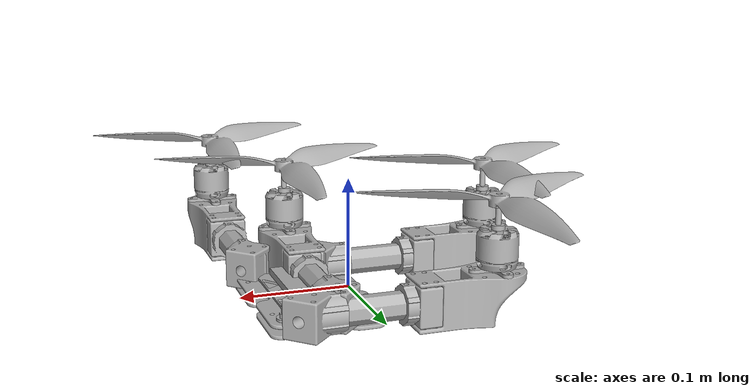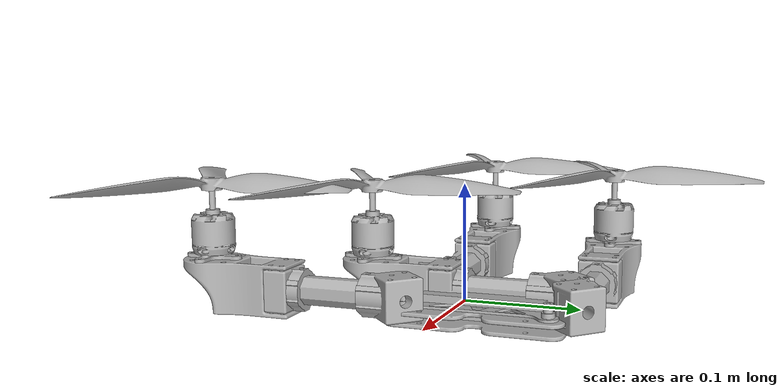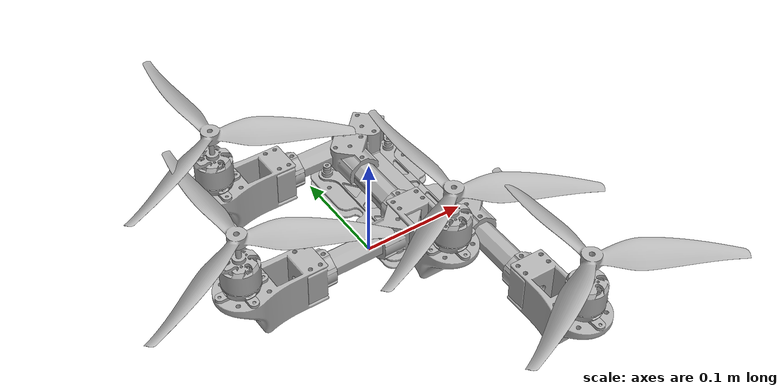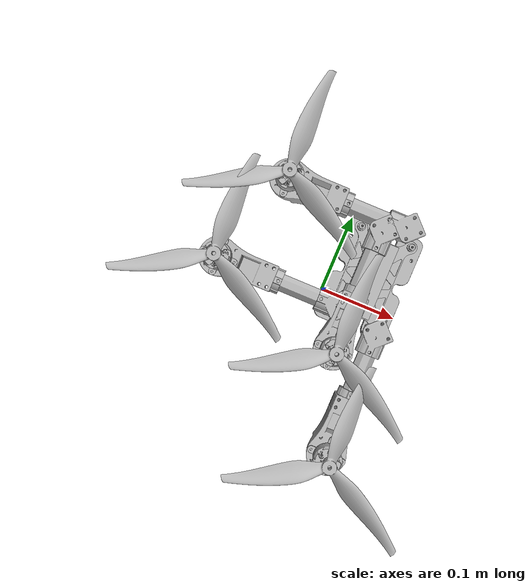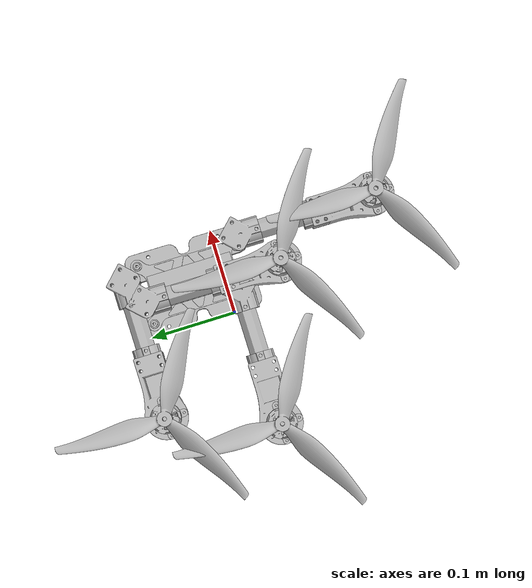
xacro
<?xml version="1.0" ?>
<robot name="cefiro"
  xmlns:xacro="http://www.ros.org/wiki/xacro">

  <xacro:include filename="$(find cefiro_description)/urdf/materials.xacro" />

  <link name="base_link">
    <inertial>
      <origin xyz="0.0490073468858582 0.03543104743409582 0.0015000000000000005" rpy="0 0 0"/>
      <mass value="0.03654087176135902"/>
      <inertia ixx="5.1e-05" iyy="3.3e-05" izz="8.4e-05" ixy="-0.0" iyz="0.0" ixz="0.0"/>
    </inertial>
    <visual>
      <origin xyz="0 0 0" rpy="0 0 0"/>
      <geometry>
        <mesh filename="package://cefiro_description/meshes/base_link.stl" scale="0.001 0.001 0.001"/>
      </geometry>
      <material name="silver"/>
    </visual>
    <collision>
      <origin xyz="0 0 0" rpy="0 0 0"/>
      <geometry>
        <mesh filename="package://cefiro_description/meshes/base_link.stl" scale="0.001 0.001 0.001"/>
      </geometry>
    </collision>
  </link>

  <link name="esc_dummy_1">
    <inertial>
      <origin xyz="4.871638824011093e-07 2.0816681711721685e-17 0.0029999999999999983" rpy="0 0 0"/>
      <mass value="0.021245400000000005"/>
      <inertia ixx="3e-06" iyy="3e-06" izz="7e-06" ixy="0.0" iyz="0.0" ixz="0.0"/>
    </inertial>
    <visual>
      <origin xyz="-0.049 -0.0355 -0.003" rpy="0 0 0"/>
      <geometry>
        <mesh filename="package://cefiro_description/meshes/esc_dummy_1.stl" scale="0.001 0.001 0.001"/>
      </geometry>
      <material name="silver"/>
    </visual>
    <collision>
      <origin xyz="-0.049 -0.0355 -0.003" rpy="0 0 0"/>
      <geometry>
        <mesh filename="package://cefiro_description/meshes/esc_dummy_1.stl" scale="0.001 0.001 0.001"/>
      </geometry>
    </collision>
  </link>

  <link name="chassis_upper_plate_1">
    <inertial>
      <origin xyz="7.017397302376549e-06 -6.564061223595513e-05 0.0017139624799641442" rpy="0 0 0"/>
      <mass value="0.03838457294189457"/>
      <inertia ixx="5.7e-05" iyy="3.5e-05" izz="9.3e-05" ixy="-0.0" iyz="-0.0" ixz="0.0"/>
    </inertial>
    <visual>
      <origin xyz="-0.049 -0.0355 -0.009" rpy="0 0 0"/>
      <geometry>
        <mesh filename="package://cefiro_description/meshes/chassis_upper_plate_1.stl" scale="0.001 0.001 0.001"/>
      </geometry>
      <material name="silver"/>
    </visual>
    <collision>
      <origin xyz="-0.049 -0.0355 -0.009" rpy="0 0 0"/>
      <geometry>
        <mesh filename="package://cefiro_description/meshes/chassis_upper_plate_1.stl" scale="0.001 0.001 0.001"/>
      </geometry>
    </collision>
  </link>

  <link name="damper_plate__1">
    <inertial>
      <origin xyz="4.884696362464358e-07 -1.9618218785599773e-09 0.0010500307381873884" rpy="0 0 0"/>
      <mass value="0.015284562556827868"/>
      <inertia ixx="2e-05" iyy="6e-06" izz="2.6e-05" ixy="0.0" iyz="-0.0" ixz="-0.0"/>
    </inertial>
    <visual>
      <origin xyz="-0.049 -0.0355 -0.012" rpy="0 0 0"/>
      <geometry>
        <mesh filename="package://cefiro_description/meshes/damper_plate__1.stl" scale="0.001 0.001 0.001"/>
      </geometry>
      <material name="silver"/>
    </visual>
    <collision>
      <origin xyz="-0.049 -0.0355 -0.012" rpy="0 0 0"/>
      <geometry>
        <mesh filename="package://cefiro_description/meshes/damper_plate__1.stl" scale="0.001 0.001 0.001"/>
      </geometry>
    </collision>
  </link>

  <link name="fmu_dummy_1">
    <inertial>
      <origin xyz="4.871638844342052e-07 -4.9960036108132044e-15 0.003150000381469757" rpy="0 0 0"/>
      <mass value="0.046619999999999995"/>
      <inertia ixx="3.9e-05" iyy="6e-06" izz="4.5e-05" ixy="0.0" iyz="0.0" ixz="0.0"/>
    </inertial>
    <visual>
      <origin xyz="-0.049 -0.0355 -0.0141" rpy="0 0 0"/>
      <geometry>
        <mesh filename="package://cefiro_description/meshes/fmu_dummy_1.stl" scale="0.001 0.001 0.001"/>
      </geometry>
      <material name="silver"/>
    </visual>
    <collision>
      <origin xyz="-0.049 -0.0355 -0.0141" rpy="0 0 0"/>
      <geometry>
        <mesh filename="package://cefiro_description/meshes/fmu_dummy_1.stl" scale="0.001 0.001 0.001"/>
      </geometry>
    </collision>
  </link>

  <link name="damper_rubber_1">
    <inertial>
      <origin xyz="3.0863844522298345e-07 2.0286793973867123e-07 0.004115951401552093" rpy="0 0 0"/>
      <mass value="0.0002583606135704884"/>
      <inertia ixx="0.0" iyy="0.0" izz="0.0" ixy="-0.0" iyz="0.0" ixz="0.0"/>
    </inertial>
    <visual>
      <origin xyz="-0.014483 0.021552 -0.016" rpy="0 0 0"/>
      <geometry>
        <mesh filename="package://cefiro_description/meshes/damper_rubber_1.stl" scale="0.001 0.001 0.001"/>
      </geometry>
      <material name="silver"/>
    </visual>
    <collision>
      <origin xyz="-0.014483 0.021552 -0.016" rpy="0 0 0"/>
      <geometry>
        <mesh filename="package://cefiro_description/meshes/damper_rubber_1.stl" scale="0.001 0.001 0.001"/>
      </geometry>
    </collision>
  </link>

  <link name="damper_rubber__1__1">
    <inertial>
      <origin xyz="-3.34308752875101e-07 2.0286793973867123e-07 0.004115951401552093" rpy="0 0 0"/>
      <mass value="0.0002583606135704884"/>
      <inertia ixx="0.0" iyy="0.0" izz="0.0" ixy="0.0" iyz="0.0" ixz="0.0"/>
    </inertial>
    <visual>
      <origin xyz="-0.083518 0.021552 -0.016" rpy="0 0 0"/>
      <geometry>
        <mesh filename="package://cefiro_description/meshes/damper_rubber__1__1.stl" scale="0.001 0.001 0.001"/>
      </geometry>
      <material name="silver"/>
    </visual>
    <collision>
      <origin xyz="-0.083518 0.021552 -0.016" rpy="0 0 0"/>
      <geometry>
        <mesh filename="package://cefiro_description/meshes/damper_rubber__1__1.stl" scale="0.001 0.001 0.001"/>
      </geometry>
    </collision>
  </link>

  <link name="damper_rubber__2__1">
    <inertial>
      <origin xyz="3.0863844522298345e-07 -2.0286793972479344e-07 0.004115951401552093" rpy="0 0 0"/>
      <mass value="0.0002583606135704884"/>
      <inertia ixx="0.0" iyy="0.0" izz="0.0" ixy="0.0" iyz="-0.0" ixz="0.0"/>
    </inertial>
    <visual>
      <origin xyz="-0.014483 -0.092552 -0.016" rpy="0 0 0"/>
      <geometry>
        <mesh filename="package://cefiro_description/meshes/damper_rubber__2__1.stl" scale="0.001 0.001 0.001"/>
      </geometry>
      <material name="silver"/>
    </visual>
    <collision>
      <origin xyz="-0.014483 -0.092552 -0.016" rpy="0 0 0"/>
      <geometry>
        <mesh filename="package://cefiro_description/meshes/damper_rubber__2__1.stl" scale="0.001 0.001 0.001"/>
      </geometry>
    </collision>
  </link>

  <link name="damper_rubber__3__1">
    <inertial>
      <origin xyz="-3.34308752875101e-07 -2.0286793972479344e-07 0.004115951401552093" rpy="0 0 0"/>
      <mass value="0.0002583606135704884"/>
      <inertia ixx="0.0" iyy="0.0" izz="0.0" ixy="0.0" iyz="-0.0" ixz="0.0"/>
    </inertial>
    <visual>
      <origin xyz="-0.083518 -0.092552 -0.016" rpy="0 0 0"/>
      <geometry>
        <mesh filename="package://cefiro_description/meshes/damper_rubber__3__1.stl" scale="0.001 0.001 0.001"/>
      </geometry>
      <material name="silver"/>
    </visual>
    <collision>
      <origin xyz="-0.083518 -0.092552 -0.016" rpy="0 0 0"/>
      <geometry>
        <mesh filename="package://cefiro_description/meshes/damper_rubber__3__1.stl" scale="0.001 0.001 0.001"/>
      </geometry>
    </collision>
  </link>

  <link name="arm_coupling_1">
    <inertial>
      <origin xyz="0.014003493663268154 -0.00433178626806606 0.016952869795820905" rpy="0 0 0"/>
      <mass value="0.03936433748667423"/>
      <inertia ixx="9e-06" iyy="7e-06" izz="9e-06" ixy="-0.0" iyz="-0.0" ixz="-0.0"/>
    </inertial>
    <visual>
      <origin xyz="-0.07068 0.026359 -0.003" rpy="0 0 0"/>
      <geometry>
        <mesh filename="package://cefiro_description/meshes/arm_coupling_1.stl" scale="0.001 0.001 0.001"/>
      </geometry>
      <material name="silver"/>
    </visual>
    <collision>
      <origin xyz="-0.07068 0.026359 -0.003" rpy="0 0 0"/>
      <geometry>
        <mesh filename="package://cefiro_description/meshes/arm_coupling_1.stl" scale="0.001 0.001 0.001"/>
      </geometry>
    </collision>
  </link>

  <link name="propeller_arm_1">
    <inertial>
      <origin xyz="2.0967664471349678e-07 -0.03500012527293352 -3.3585411112344726e-05" rpy="0 0 0"/>
      <mass value="0.025724979814274657"/>
      <inertia ixx="1.1e-05" iyy="2e-06" izz="1.1e-05" ixy="-0.0" iyz="0.0" ixz="-0.0"/>
    </inertial>
    <visual>
      <origin xyz="-0.084017 0.045505 -0.0198" rpy="0 0 0"/>
      <geometry>
        <mesh filename="package://cefiro_description/meshes/propeller_arm_1.stl" scale="0.001 0.001 0.001"/>
      </geometry>
      <material name="silver"/>
    </visual>
    <collision>
      <origin xyz="-0.084017 0.045505 -0.0198" rpy="0 0 0"/>
      <geometry>
        <mesh filename="package://cefiro_description/meshes/propeller_arm_1.stl" scale="0.001 0.001 0.001"/>
      </geometry>
    </collision>
  </link>

  <link name="arm-motor_coupling_1">
    <inertial>
      <origin xyz="2.0967644565050847e-07 -0.007372121489659378 -4.723493207555579e-05" rpy="0 0 0"/>
      <mass value="0.18570607851813228"/>
      <inertia ixx="3.1e-05" iyy="3.7e-05" izz="3e-05" ixy="-0.0" iyz="0.0" ixz="0.0"/>
    </inertial>
    <visual>
      <origin xyz="-0.084017 0.115505 -0.0198" rpy="0 0 0"/>
      <geometry>
        <mesh filename="package://cefiro_description/meshes/arm-motor_coupling_1.stl" scale="0.001 0.001 0.001"/>
      </geometry>
      <material name="silver"/>
    </visual>
    <collision>
      <origin xyz="-0.084017 0.115505 -0.0198" rpy="0 0 0"/>
      <geometry>
        <mesh filename="package://cefiro_description/meshes/arm-motor_coupling_1.stl" scale="0.001 0.001 0.001"/>
      </geometry>
    </collision>
  </link>

  <link name="motor_coupling_1">
    <inertial>
      <origin xyz="-0.00017048139883521496 -0.03501518815014221 0.0030005798631245056" rpy="0 0 0"/>
      <mass value="0.08300699604151424"/>
      <inertia ixx="4.9e-05" iyy="2.7e-05" izz="4.8e-05" ixy="0.0" iyz="8e-06" ixz="-0.0"/>
    </inertial>
    <visual>
      <origin xyz="-0.084017 0.135505 -0.0198" rpy="0 0 0"/>
      <geometry>
        <mesh filename="package://cefiro_description/meshes/motor_coupling_1.stl" scale="0.001 0.001 0.001"/>
      </geometry>
      <material name="silver"/>
    </visual>
    <collision>
      <origin xyz="-0.084017 0.135505 -0.0198" rpy="0 0 0"/>
      <geometry>
        <mesh filename="package://cefiro_description/meshes/motor_coupling_1.stl" scale="0.001 0.001 0.001"/>
      </geometry>
    </collision>
  </link>

  <link name="motor_d3536_mount_1">
    <inertial>
      <origin xyz="2.096763126596679e-07 -1.2527293319353205e-07 0.001500000000000029" rpy="0 0 0"/>
      <mass value="0.0049294478925385665"/>
      <inertia ixx="1e-06" iyy="1e-06" izz="1e-06" ixy="0.0" iyz="0.0" ixz="0.0"/>
    </inertial>
    <visual>
      <origin xyz="-0.084017 0.190005 -0.0408" rpy="0 0 0"/>
      <geometry>
        <mesh filename="package://cefiro_description/meshes/motor_d3536_mount_1.stl" scale="0.001 0.001 0.001"/>
      </geometry>
      <material name="silver"/>
    </visual>
    <collision>
      <origin xyz="-0.084017 0.190005 -0.0408" rpy="0 0 0"/>
      <geometry>
        <mesh filename="package://cefiro_description/meshes/motor_d3536_mount_1.stl" scale="0.001 0.001 0.001"/>
      </geometry>
    </collision>
  </link>

  <link name="motor_d3536_1">
    <inertial>
      <origin xyz="0.0031202422763960264 -0.00010868298858748848 0.01842564375539131" rpy="0 0 0"/>
      <mass value="0.09245457976256843"/>
      <inertia ixx="3e-06" iyy="-1e-06" izz="-9e-06" ixy="-0.000122" iyz="0.0" ixz="-1e-06"/>
    </inertial>
    <visual>
      <origin xyz="-0.084017 0.190005 -0.0438" rpy="0 0 0"/>
      <geometry>
        <mesh filename="package://cefiro_description/meshes/motor_d3536_1.stl" scale="0.001 0.001 0.001"/>
      </geometry>
      <material name="silver"/>
    </visual>
    <collision>
      <origin xyz="-0.084017 0.190005 -0.0438" rpy="0 0 0"/>
      <geometry>
        <mesh filename="package://cefiro_description/meshes/motor_d3536_1.stl" scale="0.001 0.001 0.001"/>
      </geometry>
    </collision>
  </link>

  <link name="propeller_1">
    <inertial>
      <origin xyz="2.4515800259306e-07 -9.835012876324711e-08 0.0077116558037275545" rpy="0 0 0"/>
      <mass value="0.016828834151416935"/>
      <inertia ixx="2.8e-05" iyy="2.8e-05" izz="5.7e-05" ixy="0.0" iyz="0.0" ixz="0.0"/>
    </inertial>
    <visual>
      <origin xyz="-0.084017 0.190005 -0.0973" rpy="0 0 0"/>
      <geometry>
        <mesh filename="package://cefiro_description/meshes/propeller_1.stl" scale="0.001 0.001 0.001"/>
      </geometry>
      <material name="silver"/>
    </visual>
    <collision>
      <origin xyz="-0.084017 0.190005 -0.0973" rpy="0 0 0"/>
      <geometry>
        <mesh filename="package://cefiro_description/meshes/propeller_1.stl" scale="0.001 0.001 0.001"/>
      </geometry>
    </collision>
  </link>

  <link name="arm_coupling_left_1">
    <inertial>
      <origin xyz="-0.004431446264183535 0.013972915867929403 0.01695287041007623" rpy="0 0 0"/>
      <mass value="0.0393643493558456"/>
      <inertia ixx="7e-06" iyy="9e-06" izz="9e-06" ixy="-0.0" iyz="-0.0" ixz="-0.0"/>
    </inertial>
    <visual>
      <origin xyz="-0.027321 0.026359 -0.003" rpy="0 0 0"/>
      <geometry>
        <mesh filename="package://cefiro_description/meshes/arm_coupling_left_1.stl" scale="0.001 0.001 0.001"/>
      </geometry>
      <material name="silver"/>
    </visual>
    <collision>
      <origin xyz="-0.027321 0.026359 -0.003" rpy="0 0 0"/>
      <geometry>
        <mesh filename="package://cefiro_description/meshes/arm_coupling_left_1.stl" scale="0.001 0.001 0.001"/>
      </geometry>
    </collision>
  </link>

  <link name="propeller_arm__1__1">
    <inertial>
      <origin xyz="-0.03499929696818452 -0.0002489683952809855 -3.358541111233432e-05" rpy="0 0 0"/>
      <mass value="0.025724979814274657"/>
      <inertia ixx="2e-06" iyy="1.1e-05" izz="1.1e-05" ixy="-0.0" iyz="0.0" ixz="0.0"/>
    </inertial>
    <visual>
      <origin xyz="-0.008045 0.013158 -0.0198" rpy="0 0 0"/>
      <geometry>
        <mesh filename="package://cefiro_description/meshes/propeller_arm__1__1.stl" scale="0.001 0.001 0.001"/>
      </geometry>
      <material name="silver"/>
    </visual>
    <collision>
      <origin xyz="-0.008045 0.013158 -0.0198" rpy="0 0 0"/>
      <geometry>
        <mesh filename="package://cefiro_description/meshes/propeller_arm__1__1.stl" scale="0.001 0.001 0.001"/>
      </geometry>
    </collision>
  </link>

  <link name="arm-motor_coupling__1__1">
    <inertial>
      <origin xyz="-0.007372221067360719 -5.238898528800266e-05 -4.723493207554191e-05" rpy="0 0 0"/>
      <mass value="0.18570607851813228"/>
      <inertia ixx="3.7e-05" iyy="3.1e-05" izz="3e-05" ixy="0.0" iyz="0.0" ixz="0.0"/>
    </inertial>
    <visual>
      <origin xyz="0.061953 0.013656 -0.0198" rpy="0 0 0"/>
      <geometry>
        <mesh filename="package://cefiro_description/meshes/arm-motor_coupling__1__1.stl" scale="0.001 0.001 0.001"/>
      </geometry>
      <material name="silver"/>
    </visual>
    <collision>
      <origin xyz="0.061953 0.013656 -0.0198" rpy="0 0 0"/>
      <geometry>
        <mesh filename="package://cefiro_description/meshes/arm-motor_coupling__1__1.stl" scale="0.001 0.001 0.001"/>
      </geometry>
    </collision>
  </link>

  <link name="motor_coupling__1__1">
    <inertial>
      <origin xyz="-0.03501529647977253 -7.861949867790305e-05 0.00300057986312453" rpy="0 0 0"/>
      <mass value="0.08300699604151424"/>
      <inertia ixx="2.7e-05" iyy="4.9e-05" izz="4.8e-05" ixy="-0.0" iyz="0.0" ixz="8e-06"/>
    </inertial>
    <visual>
      <origin xyz="0.081953 0.013798 -0.0198" rpy="0 0 0"/>
      <geometry>
        <mesh filename="package://cefiro_description/meshes/motor_coupling__1__1.stl" scale="0.001 0.001 0.001"/>
      </geometry>
      <material name="silver"/>
    </visual>
    <collision>
      <origin xyz="0.081953 0.013798 -0.0198" rpy="0 0 0"/>
      <geometry>
        <mesh filename="package://cefiro_description/meshes/motor_coupling__1__1.stl" scale="0.001 0.001 0.001"/>
      </geometry>
    </collision>
  </link>

  <link name="motor_d3536_mount__1__1">
    <inertial>
      <origin xyz="4.7365566396839753e-07 8.424398343157002e-08 0.0015000000000000221" rpy="0 0 0"/>
      <mass value="0.0049294478925385665"/>
      <inertia ixx="1e-06" iyy="1e-06" izz="1e-06" ixy="0.0" iyz="0.0" ixz="0.0"/>
    </inertial>
    <visual>
      <origin xyz="0.136452 0.014186 -0.0408" rpy="0 0 0"/>
      <geometry>
        <mesh filename="package://cefiro_description/meshes/motor_d3536_mount__1__1.stl" scale="0.001 0.001 0.001"/>
      </geometry>
      <material name="silver"/>
    </visual>
    <collision>
      <origin xyz="0.136452 0.014186 -0.0408" rpy="0 0 0"/>
      <geometry>
        <mesh filename="package://cefiro_description/meshes/motor_d3536_mount__1__1.stl" scale="0.001 0.001 0.001"/>
      </geometry>
    </collision>
  </link>

  <link name="motor_d3536__1__1">
    <inertial>
      <origin xyz="-0.0031202521970101205 8.644443452121911e-05 0.016925643755391302" rpy="0 0 0"/>
      <mass value="0.09245457976256843"/>
      <inertia ixx="5e-06" iyy="-3e-06" izz="-9e-06" ixy="-0.000122" iyz="-0.0" ixz="1e-06"/>
    </inertial>
    <visual>
      <origin xyz="0.136452 0.014186 -0.0438" rpy="0 0 0"/>
      <geometry>
        <mesh filename="package://cefiro_description/meshes/motor_d3536__1__1.stl" scale="0.001 0.001 0.001"/>
      </geometry>
      <material name="silver"/>
    </visual>
    <collision>
      <origin xyz="0.136452 0.014186 -0.0438" rpy="0 0 0"/>
      <geometry>
        <mesh filename="package://cefiro_description/meshes/motor_d3536__1__1.stl" scale="0.001 0.001 0.001"/>
      </geometry>
    </collision>
  </link>

  <link name="propeller__1__1">
    <inertial>
      <origin xyz="5.089914885680891e-07 1.1154612666007535e-07 0.007711655803727527" rpy="0 0 0"/>
      <mass value="0.016828834151416935"/>
      <inertia ixx="2.8e-05" iyy="2.8e-05" izz="5.7e-05" ixy="0.0" iyz="0.0" ixz="0.0"/>
    </inertial>
    <visual>
      <origin xyz="0.136452 0.014186 -0.0958" rpy="0 0 0"/>
      <geometry>
        <mesh filename="package://cefiro_description/meshes/propeller__1__1.stl" scale="0.001 0.001 0.001"/>
      </geometry>
      <material name="silver"/>
    </visual>
    <collision>
      <origin xyz="0.136452 0.014186 -0.0958" rpy="0 0 0"/>
      <geometry>
        <mesh filename="package://cefiro_description/meshes/propeller__1__1.stl" scale="0.001 0.001 0.001"/>
      </geometry>
    </collision>
  </link>

  <link name="arm_coupling__1__1">
    <inertial>
      <origin xyz="0.014003936145788157 -0.004332503110669891 0.016952869795820898" rpy="0 0 0"/>
      <mass value="0.03936433748667423"/>
      <inertia ixx="9e-06" iyy="7e-06" izz="9e-06" ixy="-0.0" iyz="-0.0" ixz="-0.0"/>
    </inertial>
    <visual>
      <origin xyz="-0.027321 -0.097359 -0.003" rpy="0 0 0"/>
      <geometry>
        <mesh filename="package://cefiro_description/meshes/arm_coupling__1__1.stl" scale="0.001 0.001 0.001"/>
      </geometry>
      <material name="silver"/>
    </visual>
    <collision>
      <origin xyz="-0.027321 -0.097359 -0.003" rpy="0 0 0"/>
      <geometry>
        <mesh filename="package://cefiro_description/meshes/arm_coupling__1__1.stl" scale="0.001 0.001 0.001"/>
      </geometry>
    </collision>
  </link>

  <link name="propeller_arm__2__1">
    <inertial>
      <origin xyz="-3.478408353019269e-07 -0.034999842115537354 -3.3585411112355135e-05" rpy="0 0 0"/>
      <mass value="0.025724979814274657"/>
      <inertia ixx="1.1e-05" iyy="2e-06" izz="1.1e-05" ixy="-0.0" iyz="-0.0" ixz="-0.0"/>
    </inertial>
    <visual>
      <origin xyz="-0.040659 -0.078212 -0.0198" rpy="0 0 0"/>
      <geometry>
        <mesh filename="package://cefiro_description/meshes/propeller_arm__2__1.stl" scale="0.001 0.001 0.001"/>
      </geometry>
      <material name="silver"/>
    </visual>
    <collision>
      <origin xyz="-0.040659 -0.078212 -0.0198" rpy="0 0 0"/>
      <geometry>
        <mesh filename="package://cefiro_description/meshes/propeller_arm__2__1.stl" scale="0.001 0.001 0.001"/>
      </geometry>
    </collision>
  </link>

  <link name="arm-motor_coupling__2__1">
    <inertial>
      <origin xyz="-3.4784103432328184e-07 -0.007371838332263207 -4.723493207554191e-05" rpy="0 0 0"/>
      <mass value="0.18570607851813228"/>
      <inertia ixx="3.1e-05" iyy="3.7e-05" izz="3e-05" ixy="-0.0" iyz="0.0" ixz="0.0"/>
    </inertial>
    <visual>
      <origin xyz="-0.040659 -0.008212 -0.0198" rpy="0 0 0"/>
      <geometry>
        <mesh filename="package://cefiro_description/meshes/arm-motor_coupling__2__1.stl" scale="0.001 0.001 0.001"/>
      </geometry>
      <material name="silver"/>
    </visual>
    <collision>
      <origin xyz="-0.040659 -0.008212 -0.0198" rpy="0 0 0"/>
      <geometry>
        <mesh filename="package://cefiro_description/meshes/arm-motor_coupling__2__1.stl" scale="0.001 0.001 0.001"/>
      </geometry>
    </collision>
  </link>

  <link name="motor_coupling__2__1">
    <inertial>
      <origin xyz="-0.00017103891631522344 -0.03501490499274606 0.0030005798631245126" rpy="0 0 0"/>
      <mass value="0.08300699604151424"/>
      <inertia ixx="4.9e-05" iyy="2.7e-05" izz="4.8e-05" ixy="0.0" iyz="8e-06" ixz="-0.0"/>
    </inertial>
    <visual>
      <origin xyz="-0.040659 0.011788 -0.0198" rpy="0 0 0"/>
      <geometry>
        <mesh filename="package://cefiro_description/meshes/motor_coupling__2__1.stl" scale="0.001 0.001 0.001"/>
      </geometry>
      <material name="silver"/>
    </visual>
    <collision>
      <origin xyz="-0.040659 0.011788 -0.0198" rpy="0 0 0"/>
      <geometry>
        <mesh filename="package://cefiro_description/meshes/motor_coupling__2__1.stl" scale="0.001 0.001 0.001"/>
      </geometry>
    </collision>
  </link>

  <link name="motor_d3536_mount__2__1">
    <inertial>
      <origin xyz="-3.478411673280002e-07 1.578844629201992e-07 0.0015000000000000221" rpy="0 0 0"/>
      <mass value="0.0049294478925385665"/>
      <inertia ixx="1e-06" iyy="1e-06" izz="1e-06" ixy="0.0" iyz="-0.0" ixz="0.0"/>
    </inertial>
    <visual>
      <origin xyz="-0.040659 0.066288 -0.0408" rpy="0 0 0"/>
      <geometry>
        <mesh filename="package://cefiro_description/meshes/motor_d3536_mount__2__1.stl" scale="0.001 0.001 0.001"/>
      </geometry>
      <material name="silver"/>
    </visual>
    <collision>
      <origin xyz="-0.040659 0.066288 -0.0408" rpy="0 0 0"/>
      <geometry>
        <mesh filename="package://cefiro_description/meshes/motor_d3536_mount__2__1.stl" scale="0.001 0.001 0.001"/>
      </geometry>
    </collision>
  </link>

  <link name="motor_d3536__2__1">
    <inertial>
      <origin xyz="-0.003120380393379127 0.00010871571788022283 0.016925643755391302" rpy="0 0 0"/>
      <mass value="0.09245457976256843"/>
      <inertia ixx="3e-06" iyy="-1e-06" izz="-9e-06" ixy="-0.000122" iyz="-0.0" ixz="1e-06"/>
    </inertial>
    <visual>
      <origin xyz="-0.040659 0.066288 -0.0438" rpy="0 0 0"/>
      <geometry>
        <mesh filename="package://cefiro_description/meshes/motor_d3536__2__1.stl" scale="0.001 0.001 0.001"/>
      </geometry>
      <material name="silver"/>
    </visual>
    <collision>
      <origin xyz="-0.040659 0.066288 -0.0438" rpy="0 0 0"/>
      <geometry>
        <mesh filename="package://cefiro_description/meshes/motor_d3536__2__1.stl" scale="0.001 0.001 0.001"/>
      </geometry>
    </collision>
  </link>

  <link name="propeller__2__1">
    <inertial>
      <origin xyz="-3.1231201812892406e-07 1.8493454789769714e-07 0.007711655803727527" rpy="0 0 0"/>
      <mass value="0.016828834151416935"/>
      <inertia ixx="2.8e-05" iyy="2.8e-05" izz="5.7e-05" ixy="0.0" iyz="0.0" ixz="0.0"/>
    </inertial>
    <visual>
      <origin xyz="-0.040659 0.066288 -0.0958" rpy="0 0 0"/>
      <geometry>
        <mesh filename="package://cefiro_description/meshes/propeller__2__1.stl" scale="0.001 0.001 0.001"/>
      </geometry>
      <material name="silver"/>
    </visual>
    <collision>
      <origin xyz="-0.040659 0.066288 -0.0958" rpy="0 0 0"/>
      <geometry>
        <mesh filename="package://cefiro_description/meshes/propeller__2__1.stl" scale="0.001 0.001 0.001"/>
      </geometry>
    </collision>
  </link>

  <link name="arm_coupling_left__1__1">
    <inertial>
      <origin xyz="-0.004431888746703513 0.013972199025325566 0.01695287041007622" rpy="0 0 0"/>
      <mass value="0.0393643493558456"/>
      <inertia ixx="7e-06" iyy="9e-06" izz="9e-06" ixy="-0.0" iyz="-0.0" ixz="-0.0"/>
    </inertial>
    <visual>
      <origin xyz="-0.07068 -0.097359 -0.003" rpy="0 0 0"/>
      <geometry>
        <mesh filename="package://cefiro_description/meshes/arm_coupling_left__1__1.stl" scale="0.001 0.001 0.001"/>
      </geometry>
      <material name="silver"/>
    </visual>
    <collision>
      <origin xyz="-0.07068 -0.097359 -0.003" rpy="0 0 0"/>
      <geometry>
        <mesh filename="package://cefiro_description/meshes/arm_coupling_left__1__1.stl" scale="0.001 0.001 0.001"/>
      </geometry>
    </collision>
  </link>

  <link name="propeller_arm__3__1">
    <inertial>
      <origin xyz="-0.03499873945070445 -0.0002486852378848353 -3.3585411112355135e-05" rpy="0 0 0"/>
      <mass value="0.025724979814274657"/>
      <inertia ixx="2e-06" iyy="1.1e-05" izz="1.1e-05" ixy="-0.0" iyz="0.0" ixz="-0.0"/>
    </inertial>
    <visual>
      <origin xyz="-0.051403 -0.110559 -0.0198" rpy="0 0 0"/>
      <geometry>
        <mesh filename="package://cefiro_description/meshes/propeller_arm__3__1.stl" scale="0.001 0.001 0.001"/>
      </geometry>
      <material name="silver"/>
    </visual>
    <collision>
      <origin xyz="-0.051403 -0.110559 -0.0198" rpy="0 0 0"/>
      <geometry>
        <mesh filename="package://cefiro_description/meshes/propeller_arm__3__1.stl" scale="0.001 0.001 0.001"/>
      </geometry>
    </collision>
  </link>

  <link name="arm-motor_coupling__3__1">
    <inertial>
      <origin xyz="-0.007371663549880655 -5.210582789184903e-05 -4.723493207554191e-05" rpy="0 0 0"/>
      <mass value="0.18570607851813228"/>
      <inertia ixx="3.7e-05" iyy="3.1e-05" izz="3e-05" ixy="0.0" iyz="0.0" ixz="0.0"/>
    </inertial>
    <visual>
      <origin xyz="0.018595 -0.110061 -0.0198" rpy="0 0 0"/>
      <geometry>
        <mesh filename="package://cefiro_description/meshes/arm-motor_coupling__3__1.stl" scale="0.001 0.001 0.001"/>
      </geometry>
      <material name="silver"/>
    </visual>
    <collision>
      <origin xyz="0.018595 -0.110061 -0.0198" rpy="0 0 0"/>
      <geometry>
        <mesh filename="package://cefiro_description/meshes/arm-motor_coupling__3__1.stl" scale="0.001 0.001 0.001"/>
      </geometry>
    </collision>
  </link>

  <link name="motor_coupling__3__1">
    <inertial>
      <origin xyz="-0.035015738962292445 -7.833634128169564e-05 0.0030005798631244952" rpy="0 0 0"/>
      <mass value="0.08300699604151424"/>
      <inertia ixx="2.7e-05" iyy="4.9e-05" izz="4.8e-05" ixy="-0.0" iyz="0.0" ixz="8e-06"/>
    </inertial>
    <visual>
      <origin xyz="0.038594 -0.109919 -0.0198" rpy="0 0 0"/>
      <geometry>
        <mesh filename="package://cefiro_description/meshes/motor_coupling__3__1.stl" scale="0.001 0.001 0.001"/>
      </geometry>
      <material name="silver"/>
    </visual>
    <collision>
      <origin xyz="0.038594 -0.109919 -0.0198" rpy="0 0 0"/>
      <geometry>
        <mesh filename="package://cefiro_description/meshes/motor_coupling__3__1.stl" scale="0.001 0.001 0.001"/>
      </geometry>
    </collision>
  </link>

  <link name="motor_d3536_mount__3__1">
    <inertial>
      <origin xyz="3.117314407996563e-08 3.6740137963897634e-07 0.0014999999999999805" rpy="0 0 0"/>
      <mass value="0.0049294478925385665"/>
      <inertia ixx="1e-06" iyy="1e-06" izz="1e-06" ixy="0.0" iyz="0.0" ixz="0.0"/>
    </inertial>
    <visual>
      <origin xyz="0.093093 -0.109531 -0.0408" rpy="0 0 0"/>
      <geometry>
        <mesh filename="package://cefiro_description/meshes/motor_d3536_mount__3__1.stl" scale="0.001 0.001 0.001"/>
      </geometry>
      <material name="silver"/>
    </visual>
    <collision>
      <origin xyz="0.093093 -0.109531 -0.0408" rpy="0 0 0"/>
      <geometry>
        <mesh filename="package://cefiro_description/meshes/motor_d3536_mount__3__1.stl" scale="0.001 0.001 0.001"/>
      </geometry>
    </collision>
  </link>

  <link name="motor_d3536__3__1">
    <inertial>
      <origin xyz="-0.0031206946795299256 8.672759191745427e-05 0.01692564375539126" rpy="0 0 0"/>
      <mass value="0.09245457976256843"/>
      <inertia ixx="5e-06" iyy="-3e-06" izz="-9e-06" ixy="-0.000122" iyz="-0.0" ixz="1e-06"/>
    </inertial>
    <visual>
      <origin xyz="0.093093 -0.109531 -0.0438" rpy="0 0 0"/>
      <geometry>
        <mesh filename="package://cefiro_description/meshes/motor_d3536__3__1.stl" scale="0.001 0.001 0.001"/>
      </geometry>
      <material name="silver"/>
    </visual>
    <collision>
      <origin xyz="0.093093 -0.109531 -0.0438" rpy="0 0 0"/>
      <geometry>
        <mesh filename="package://cefiro_description/meshes/motor_d3536__3__1.stl" scale="0.001 0.001 0.001"/>
      </geometry>
    </collision>
  </link>

  <link name="propeller__3__1">
    <inertial>
      <origin xyz="6.650896902660186e-08 3.9470352287962474e-07 0.007711655803727499" rpy="0 0 0"/>
      <mass value="0.016828834151416935"/>
      <inertia ixx="2.8e-05" iyy="2.8e-05" izz="5.7e-05" ixy="0.0" iyz="0.0" ixz="0.0"/>
    </inertial>
    <visual>
      <origin xyz="0.093093 -0.109531 -0.0958" rpy="0 0 0"/>
      <geometry>
        <mesh filename="package://cefiro_description/meshes/propeller__3__1.stl" scale="0.001 0.001 0.001"/>
      </geometry>
      <material name="silver"/>
    </visual>
    <collision>
      <origin xyz="0.093093 -0.109531 -0.0958" rpy="0 0 0"/>
      <geometry>
        <mesh filename="package://cefiro_description/meshes/propeller__3__1.stl" scale="0.001 0.001 0.001"/>
      </geometry>
    </collision>
  </link>

  <joint name="Rigid 3" type="fixed">
    <origin xyz="0.049 0.0355 0.003" rpy="0 0 0"/>
    <parent link="base_link"/>
    <child link="esc_dummy_1"/>
  </joint>

  <joint name="Rigid 4" type="fixed">
    <origin xyz="0.0 0.0 0.006" rpy="0 0 0"/>
    <parent link="esc_dummy_1"/>
    <child link="chassis_upper_plate_1"/>
  </joint>

  <joint name="Rigid 5" type="fixed">
    <origin xyz="0.0 0.0 0.003" rpy="0 0 0"/>
    <parent link="chassis_upper_plate_1"/>
    <child link="damper_plate__1"/>
  </joint>

  <joint name="Rigid 6" type="fixed">
    <origin xyz="0.0 0.0 0.0021" rpy="0 0 0"/>
    <parent link="damper_plate__1"/>
    <child link="fmu_dummy_1"/>
  </joint>

  <joint name="Rigid 7" type="fixed">
    <origin xyz="-0.034517 -0.057052 0.007" rpy="0 0 0"/>
    <parent link="chassis_upper_plate_1"/>
    <child link="damper_rubber_1"/>
  </joint>

  <joint name="Rigid 8" type="fixed">
    <origin xyz="0.034518 -0.057052 0.007" rpy="0 0 0"/>
    <parent link="chassis_upper_plate_1"/>
    <child link="damper_rubber__1__1"/>
  </joint>

  <joint name="Rigid 9" type="fixed">
    <origin xyz="-0.034517 0.057052 0.007" rpy="0 0 0"/>
    <parent link="chassis_upper_plate_1"/>
    <child link="damper_rubber__2__1"/>
  </joint>

  <joint name="Rigid 10" type="fixed">
    <origin xyz="0.034518 0.057052 0.007" rpy="0 0 0"/>
    <parent link="chassis_upper_plate_1"/>
    <child link="damper_rubber__3__1"/>
  </joint>

  <joint name="Rigid 11" type="fixed">
    <origin xyz="0.07068 -0.026359 0.003" rpy="0 0 0"/>
    <parent link="base_link"/>
    <child link="arm_coupling_1"/>
  </joint>

  <joint name="Rigid 12" type="fixed">
    <origin xyz="0.013337 -0.019146 0.0168" rpy="0 0 0"/>
    <parent link="arm_coupling_1"/>
    <child link="propeller_arm_1"/>
  </joint>

  <joint name="Rigid 13" type="fixed">
    <origin xyz="0.0 -0.07 0.0" rpy="0 0 0"/>
    <parent link="propeller_arm_1"/>
    <child link="arm-motor_coupling_1"/>
  </joint>

  <joint name="Rigid 14" type="fixed">
    <origin xyz="0.0 -0.02 0.0" rpy="0 0 0"/>
    <parent link="arm-motor_coupling_1"/>
    <child link="motor_coupling_1"/>
  </joint>

  <joint name="Rigid 15" type="fixed">
    <origin xyz="0.0 -0.0545 0.021" rpy="0 0 0"/>
    <parent link="motor_coupling_1"/>
    <child link="motor_d3536_mount_1"/>
  </joint>

  <joint name="Rigid 16" type="fixed">
    <origin xyz="0.0 0.0 0.003" rpy="0 0 0"/>
    <parent link="motor_d3536_mount_1"/>
    <child link="motor_d3536_1"/>
  </joint>

  <joint name="Revolute 17" type="continuous">
    <origin xyz="0.0 0.0 0.0535" rpy="0 0 0"/>
    <parent link="motor_d3536_1"/>
    <child link="propeller_1"/>
    <axis xyz="0.0 0.0 1.0"/>
  </joint>

  <joint name="Rigid 18" type="fixed">
    <origin xyz="0.027321 -0.026359 0.003" rpy="0 0 0"/>
    <parent link="base_link"/>
    <child link="arm_coupling_left_1"/>
  </joint>

  <joint name="Rigid 19" type="fixed">
    <origin xyz="-0.019276 0.013201 0.0168" rpy="0 0 0"/>
    <parent link="arm_coupling_left_1"/>
    <child link="propeller_arm__1__1"/>
  </joint>

  <joint name="Rigid 20" type="fixed">
    <origin xyz="-0.069998 -0.000498 0.0" rpy="0 0 0"/>
    <parent link="propeller_arm__1__1"/>
    <child link="arm-motor_coupling__1__1"/>
  </joint>

  <joint name="Rigid 21" type="fixed">
    <origin xyz="-0.02 -0.000142 0.0" rpy="0 0 0"/>
    <parent link="arm-motor_coupling__1__1"/>
    <child link="motor_coupling__1__1"/>
  </joint>

  <joint name="Rigid 22" type="fixed">
    <origin xyz="-0.054499 -0.000388 0.021" rpy="0 0 0"/>
    <parent link="motor_coupling__1__1"/>
    <child link="motor_d3536_mount__1__1"/>
  </joint>

  <joint name="Rigid 23" type="fixed">
    <origin xyz="0.0 0.0 0.003" rpy="0 0 0"/>
    <parent link="motor_d3536_mount__1__1"/>
    <child link="motor_d3536__1__1"/>
  </joint>

  <joint name="Revolute 24" type="continuous">
    <origin xyz="0.0 0.0 0.052" rpy="0 0 0"/>
    <parent link="motor_d3536__1__1"/>
    <child link="propeller__1__1"/>
    <axis xyz="-0.0 -0.0 1.0"/>
  </joint>

  <joint name="Rigid 25" type="fixed">
    <origin xyz="0.027321 0.097359 0.003" rpy="0 0 0"/>
    <parent link="base_link"/>
    <child link="arm_coupling__1__1"/>
  </joint>

  <joint name="Rigid 26" type="fixed">
    <origin xyz="0.013338 -0.019147 0.0168" rpy="0 0 0"/>
    <parent link="arm_coupling__1__1"/>
    <child link="propeller_arm__2__1"/>
  </joint>

  <joint name="Rigid 27" type="fixed">
    <origin xyz="0.0 -0.07 0.0" rpy="0 0 0"/>
    <parent link="propeller_arm__2__1"/>
    <child link="arm-motor_coupling__2__1"/>
  </joint>

  <joint name="Rigid 28" type="fixed">
    <origin xyz="0.0 -0.02 0.0" rpy="0 0 0"/>
    <parent link="arm-motor_coupling__2__1"/>
    <child link="motor_coupling__2__1"/>
  </joint>

  <joint name="Rigid 29" type="fixed">
    <origin xyz="0.0 -0.0545 0.021" rpy="0 0 0"/>
    <parent link="motor_coupling__2__1"/>
    <child link="motor_d3536_mount__2__1"/>
  </joint>

  <joint name="Rigid 30" type="fixed">
    <origin xyz="0.0 0.0 0.003" rpy="0 0 0"/>
    <parent link="motor_d3536_mount__2__1"/>
    <child link="motor_d3536__2__1"/>
  </joint>

  <joint name="Revolute 31" type="continuous">
    <origin xyz="0.0 0.0 0.052" rpy="0 0 0"/>
    <parent link="motor_d3536__2__1"/>
    <child link="propeller__2__1"/>
    <axis xyz="-0.0 -0.0 1.0"/>
  </joint>

  <joint name="Rigid 32" type="fixed">
    <origin xyz="0.07068 0.097359 0.003" rpy="0 0 0"/>
    <parent link="base_link"/>
    <child link="arm_coupling_left__1__1"/>
  </joint>

  <joint name="Rigid 33" type="fixed">
    <origin xyz="-0.019277 0.0132 0.0168" rpy="0 0 0"/>
    <parent link="arm_coupling_left__1__1"/>
    <child link="propeller_arm__3__1"/>
  </joint>

  <joint name="Rigid 34" type="fixed">
    <origin xyz="-0.069998 -0.000498 0.0" rpy="0 0 0"/>
    <parent link="propeller_arm__3__1"/>
    <child link="arm-motor_coupling__3__1"/>
  </joint>

  <joint name="Rigid 35" type="fixed">
    <origin xyz="-0.019999 -0.000142 0.0" rpy="0 0 0"/>
    <parent link="arm-motor_coupling__3__1"/>
    <child link="motor_coupling__3__1"/>
  </joint>

  <joint name="Rigid 36" type="fixed">
    <origin xyz="-0.054499 -0.000388 0.021" rpy="0 0 0"/>
    <parent link="motor_coupling__3__1"/>
    <child link="motor_d3536_mount__3__1"/>
  </joint>

  <joint name="Rigid 37" type="fixed">
    <origin xyz="0.0 0.0 0.003" rpy="0 0 0"/>
    <parent link="motor_d3536_mount__3__1"/>
    <child link="motor_d3536__3__1"/>
  </joint>

  <joint name="Revolute 38" type="continuous">
    <origin xyz="0.0 0.0 0.052" rpy="0 0 0"/>
    <parent link="motor_d3536__3__1"/>
    <child link="propeller__3__1"/>
    <axis xyz="-0.0 -0.0 1.0"/>
  </joint>

</robot>

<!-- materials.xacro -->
<robot name="cefiro" xmlns:xacro="http://www.ros.org/wiki/xacro" >

<material name="silver">
  <color rgba="0.700 0.700 0.700 1.000"/>
</material>

</robot>
